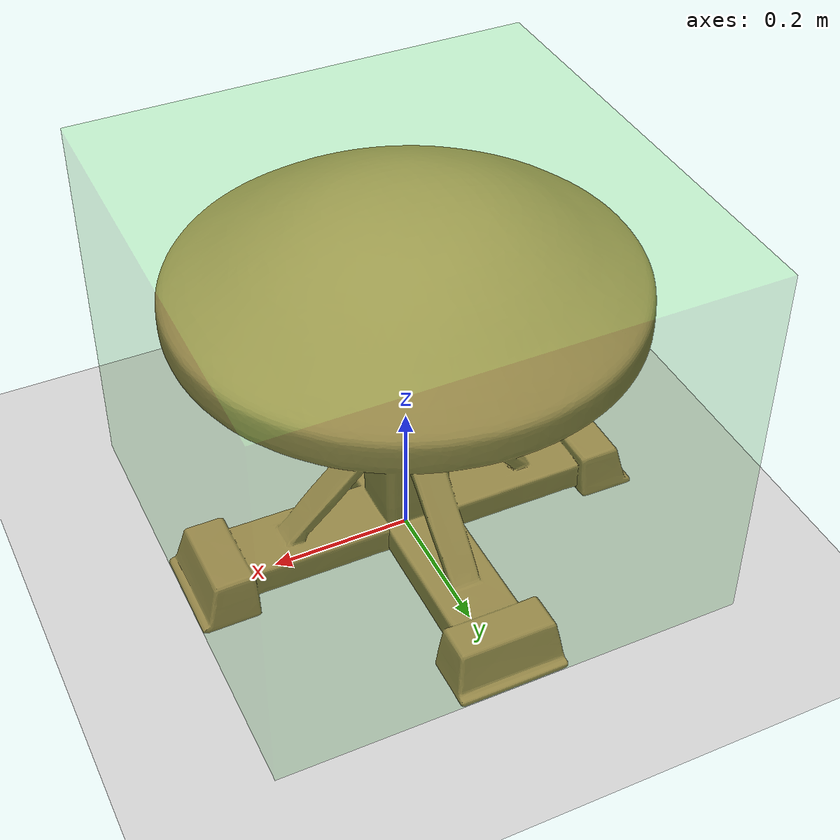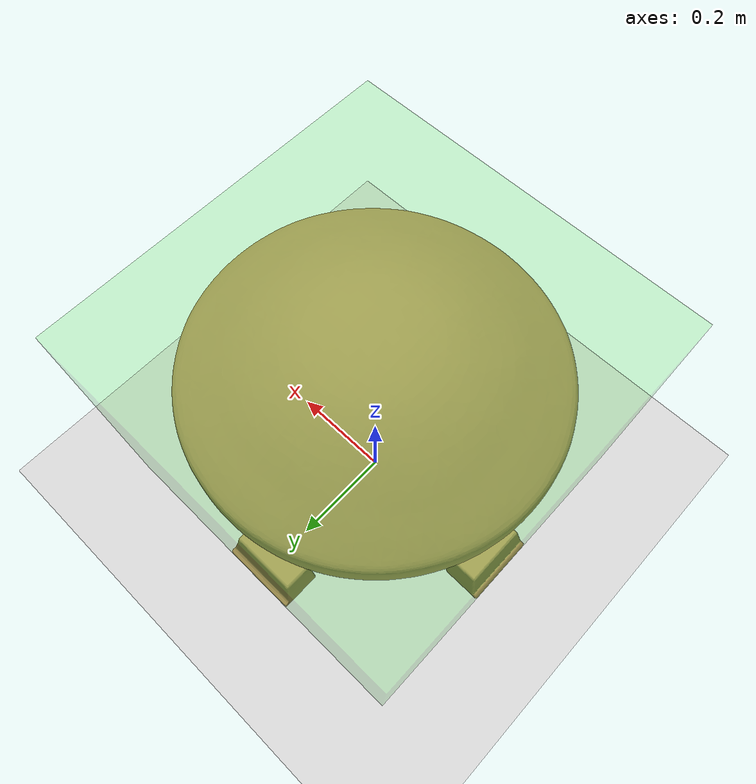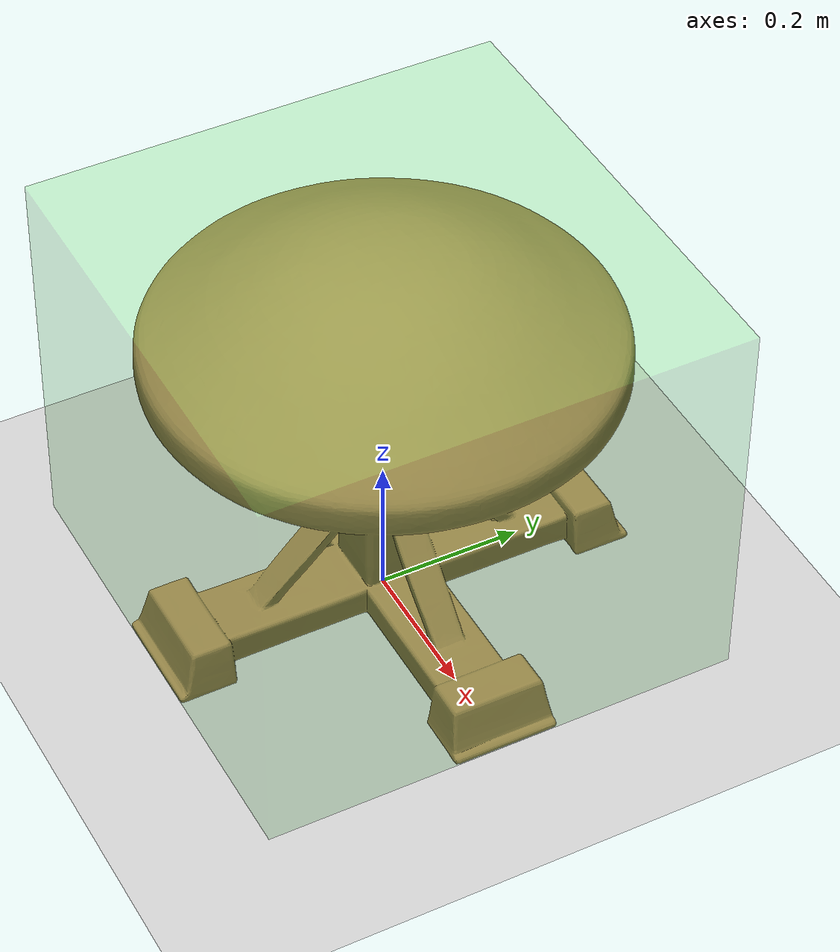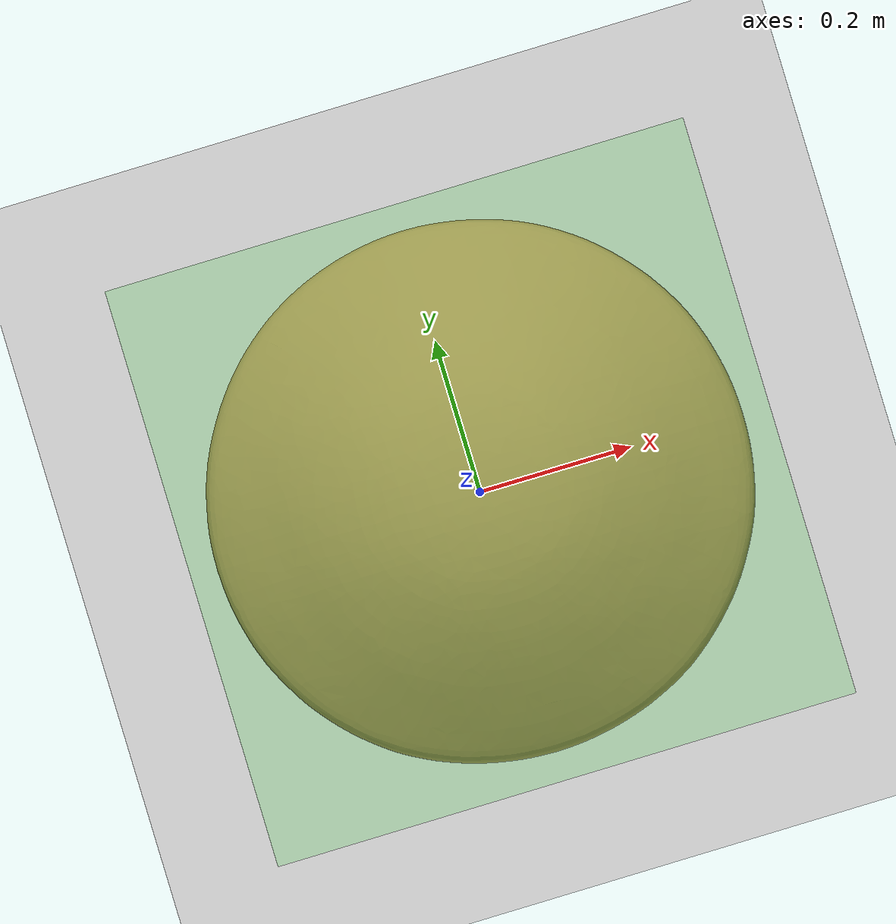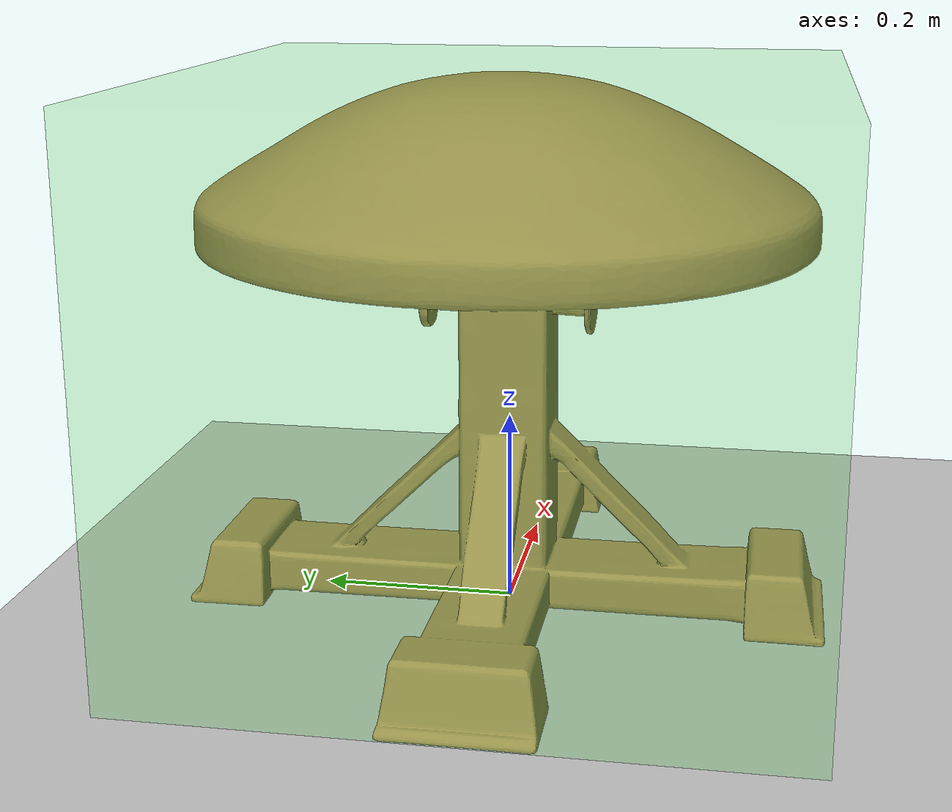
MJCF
<mujoco model="mushroom_box_collision">
  <compiler angle="radian" meshdir="." texturedir="." autolimits="true"/>
  <option timestep="0.002" gravity="0 0 -9.81"/>
  <asset>
    <mesh name="mushroom_visual" file="mushroom_visual.obj"/>
    <material name="visual_mat" rgba="0.72 0.55 0.34 1"/>
    <material name="collision_mat" rgba="0.2 0.8 0.2 0.22"/>
  </asset>

  <worldbody>
    <geom name="floor" type="plane" size="2 2 0.05" rgba="0.8 0.8 0.8 1"/>
    <body name="mushroom_body" pos="0 0 0.276493043">
      <inertial pos="0 0 0"
                mass="1"
                diaginertia="0.0619598482 0.0623399405 0.073334187"/>
      <freejoint/>
      <geom name="mushroom_collision_box" type="box"
            size="0.33252281 0.330803782 0.276493043"
            material="collision_mat" friction="0.8 0.02 0.001"/>
      <geom name="mushroom_visual_mesh" type="mesh" mesh="mushroom_visual"
            material="visual_mat" contype="0" conaffinity="0" group="2"/>
    </body>
  </worldbody>
</mujoco>
